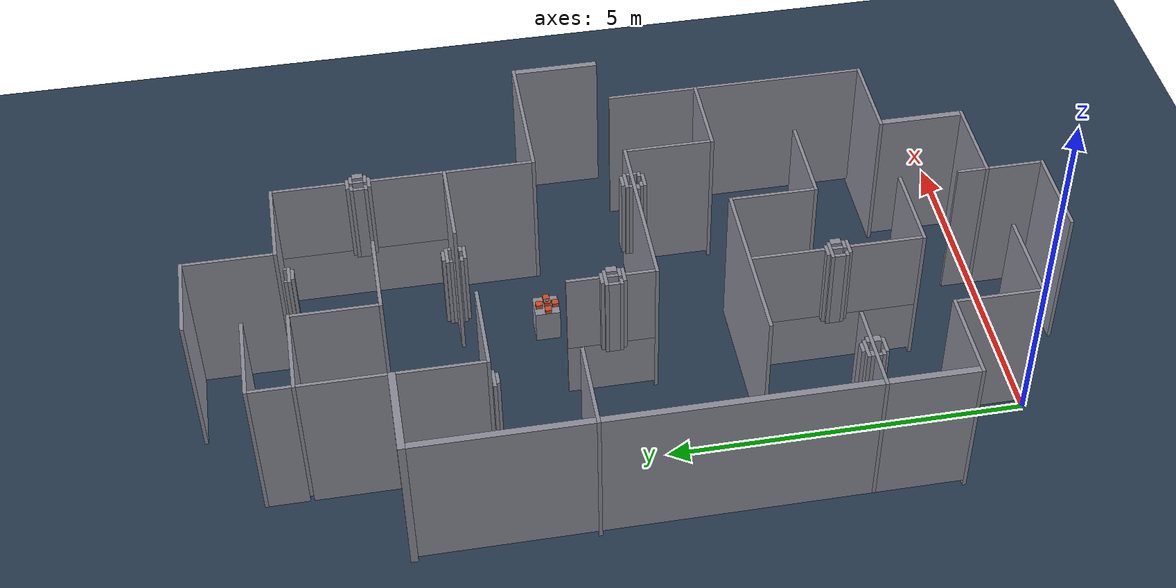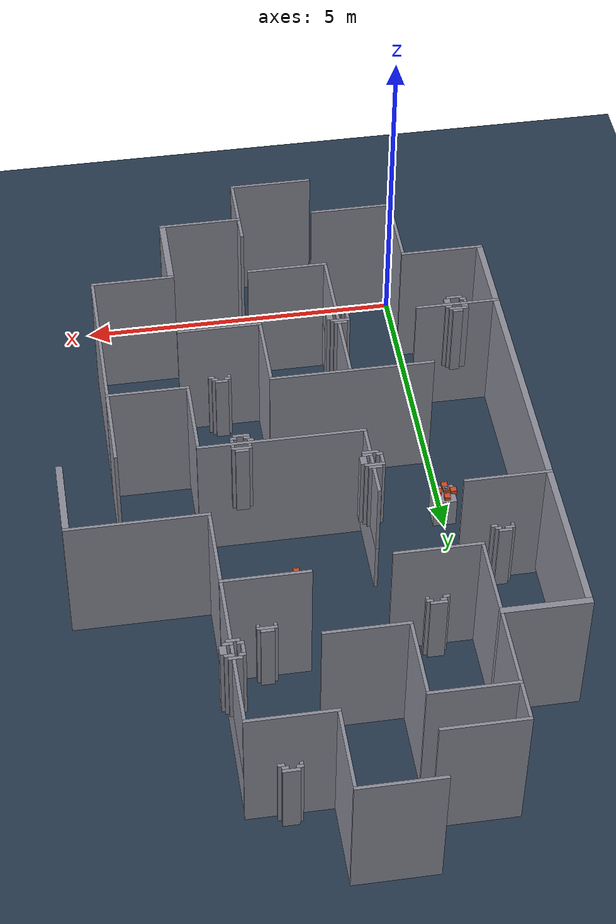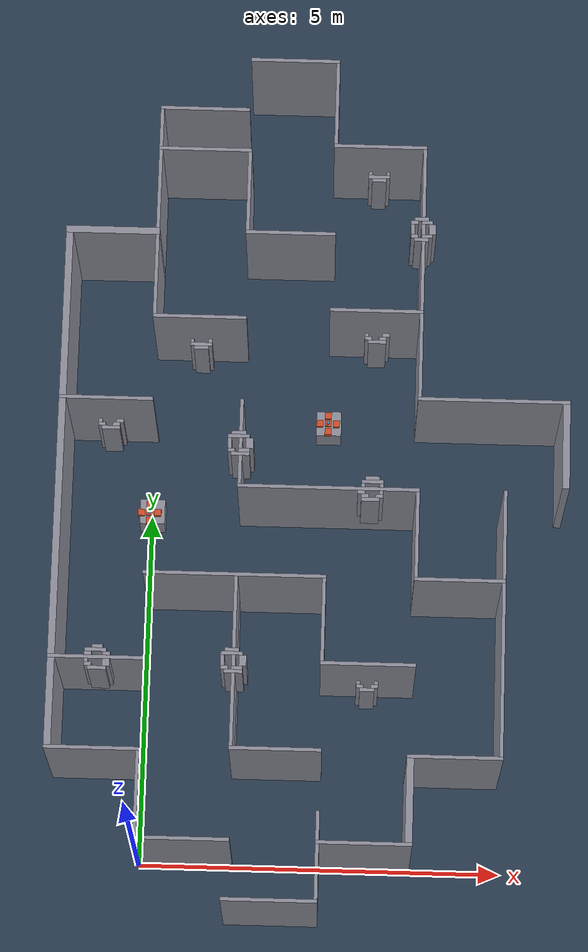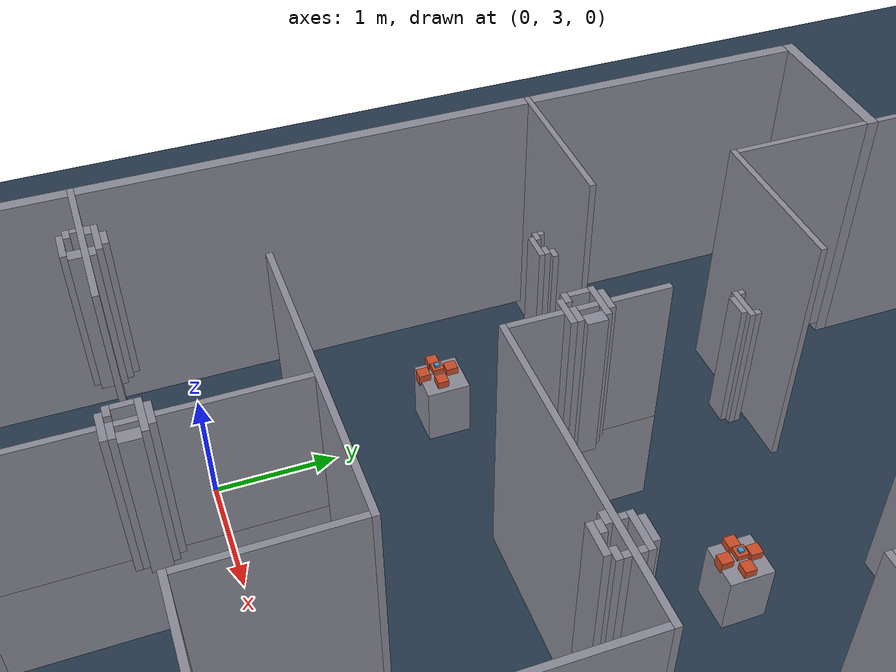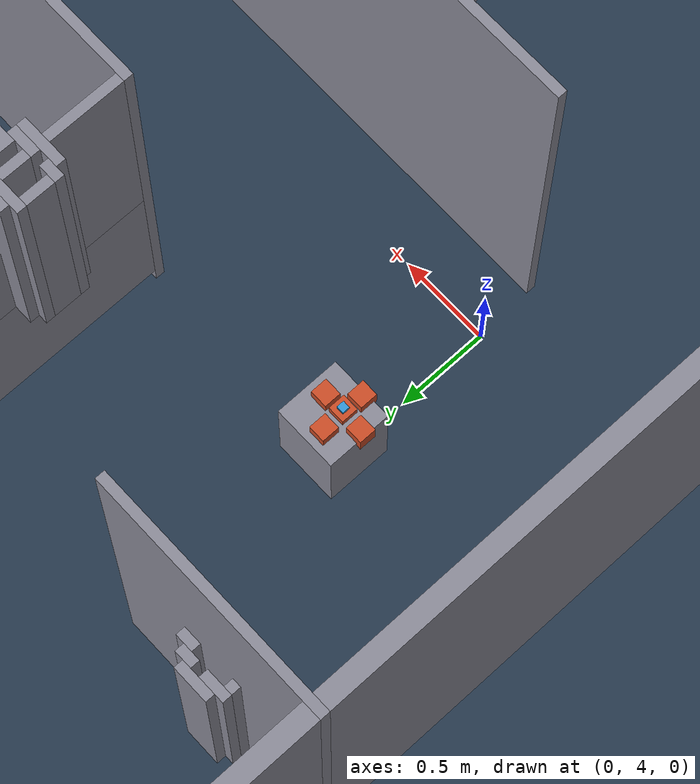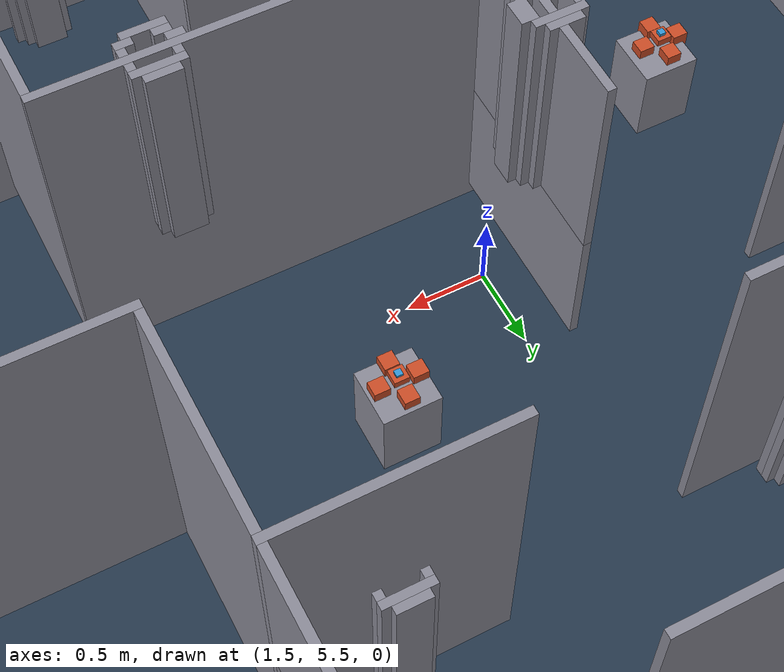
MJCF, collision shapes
<mujoco model="aesir_maze">

  <default>
    <geom condim="4" friction="0.2 0.005 0.0001"/>
  </default>

  <asset>
    <texture name="texplane" type="2d" builtin="checker" rgb1=".2 .3 .4" rgb2=".1 0.15 0.2" width="512" height="512"/>
    <material name="matplane" reflectance="0.3" texture="texplane" texrepeat="4 4" texuniform="true"/>
    <material name="maze_visual" rgba="0.55 0.55 0.6 1"/>
    <material name="obs_hall" rgba="0.8 0.3 0.15 1"/>
    <material name="obs_door" rgba="0.2 0.6 0.85 1"/>

    <mesh name="base_link_mesh" file="meshes/maze/base_link.stl" scale="0.001 0.001 0.001"/>
    <mesh name="hub_2" file="meshes/maze/B2__1___1__2.stl" scale="0.001 0.001 0.001"/>
    <mesh name="hub_3" file="meshes/maze/B2__1___1__3.stl" scale="0.001 0.001 0.001"/>
    <mesh name="hub_4" file="meshes/maze/B2__1___1__4.stl" scale="0.001 0.001 0.001"/>
    <mesh name="hub_5" file="meshes/maze/B2__1___1__5.stl" scale="0.001 0.001 0.001"/>
    <mesh name="hub_6" file="meshes/maze/B2__1___1__6.stl" scale="0.001 0.001 0.001"/>
    <mesh name="hub_7" file="meshes/maze/B2__1___1__7.stl" scale="0.001 0.001 0.001"/>
    <mesh name="hub_8" file="meshes/maze/B2__1___1__8.stl" scale="0.001 0.001 0.001"/>
    <mesh name="hub_9" file="meshes/maze/B2__1___1__9.stl" scale="0.001 0.001 0.001"/>
    <mesh name="hub_10" file="meshes/maze/B2__1___1__10.stl" scale="0.001 0.001 0.001"/>
    <mesh name="hub_11" file="meshes/maze/B2__1___1__11.stl" scale="0.001 0.001 0.001"/>
    <mesh name="door_2" file="meshes/maze/B2__1__2.stl" scale="0.001 0.001 0.001"/>
    <mesh name="door_3" file="meshes/maze/B2__1__3.stl" scale="0.001 0.001 0.001"/>
    <mesh name="door_4" file="meshes/maze/B2__1__4.stl" scale="0.001 0.001 0.001"/>
    <mesh name="door_5" file="meshes/maze/B2__1__5.stl" scale="0.001 0.001 0.001"/>
    <mesh name="door_6" file="meshes/maze/B2__1__6.stl" scale="0.001 0.001 0.001"/>
    <mesh name="door_7" file="meshes/maze/B2__1__7.stl" scale="0.001 0.001 0.001"/>
    <mesh name="door_8" file="meshes/maze/B2__1__8.stl" scale="0.001 0.001 0.001"/>
    <mesh name="door_9" file="meshes/maze/B2__1__9.stl" scale="0.001 0.001 0.001"/>
    <mesh name="door_10" file="meshes/maze/B2__1__10.stl" scale="0.001 0.001 0.001"/>
    <mesh name="door_11" file="meshes/maze/B2__1__11.stl" scale="0.001 0.001 0.001"/>
  </asset>

  <worldbody>
    <light directional="true" pos="3 5 8" dir="-0.5 -0.5 -1"/>
    <light directional="true" pos="-1 2 6" dir="0.5 -0.3 -1"/>

    <geom name="maze_floor" type="plane" size="50 50 0.1" pos="0 0 -.002" material="matplane"/>

    <geom name="fatal_floor" type="plane" size="50 50 0.1" pos="0 0 -.5" rgba="0.6 0.05 0.05 1"/>

    <!-- MAZE visual (mesh vertices ya estan en world coords) -->
    <body name="maze_base">
      <geom name="maze_visual" type="mesh" mesh="base_link_mesh"
            contype="0" conaffinity="0" material="maze_visual"/>
    </body>

    <!-- ===== HUBS + PUERTAS ===== -->
    <!-- Los meshes tienen vertices en world coords, todo en (0,0,0) -->
    <!-- Box colliders en las posiciones de los mesh centers -->

    <!-- Hub 2: mesh center (0.1043, 4.897, 0.6656) -->
    <body name="hub_2">
      <geom name="hub_2_vis" type="mesh" mesh="hub_2"
            contype="0" conaffinity="0" material="obs_hall"/>
      <geom name="hub_2_col" type="box" size="0.0475 0.0452 0.0475"
            pos="0.1043 4.897 0.6656" rgba="0.8 0.3 0.15 0.4"/>
    </body>
    <body name="door_2">
      <geom name="door_2_vis" type="mesh" mesh="door_2"
            contype="0" conaffinity="0" material="obs_door"/>
      <geom name="door_2_col" type="box" size="0.0255 0.0200 0.0255"
            pos="0.1225 4.897 0.6838" rgba="0.2 0.6 0.85 0.4"/>
    </body>

    <!-- Hub 3: mesh center (-0.0113, 5.0125, 0.6656) -->
    <body name="hub_3">
      <geom name="hub_3_vis" type="mesh" mesh="hub_3"
            contype="0" conaffinity="0" material="obs_hall"/>
      <geom name="hub_3_col" type="box" size="0.0452 0.0475 0.0475"
            pos="-0.0113 5.0125 0.6656" rgba="0.8 0.3 0.15 0.4"/>
    </body>
    <body name="door_3">
      <geom name="door_3_vis" type="mesh" mesh="door_3"
            contype="0" conaffinity="0" material="obs_door"/>
      <geom name="door_3_col" type="box" size="0.0200 0.0255 0.0255"
            pos="-0.0113 5.0272 0.6802" rgba="0.2 0.6 0.85 0.4"/>
    </body>

    <!-- Hub 4: mesh center (-0.0113, 4.7814, 0.6656) -->
    <body name="hub_4">
      <geom name="hub_4_vis" type="mesh" mesh="hub_4"
            contype="0" conaffinity="0" material="obs_hall"/>
      <geom name="hub_4_col" type="box" size="0.0452 0.0475 0.0475"
            pos="-0.0113 4.7814 0.6656" rgba="0.8 0.3 0.15 0.4"/>
    </body>
    <body name="door_4">
      <geom name="door_4_vis" type="mesh" mesh="door_4"
            contype="0" conaffinity="0" material="obs_door"/>
      <geom name="door_4_col" type="box" size="0.0200 0.0255 0.0255"
            pos="-0.0113 4.7667 0.6802" rgba="0.2 0.6 0.85 0.4"/>
    </body>

    <!-- Hub 5: mesh center (-0.0113, 4.897, 0.722) -->
    <body name="hub_5">
      <geom name="hub_5_vis" type="mesh" mesh="hub_5"
            contype="0" conaffinity="0" material="obs_hall"/>
      <geom name="hub_5_col" type="box" size="0.0452 0.0452 0.022"
            pos="-0.0113 4.897 0.722" rgba="0.8 0.3 0.15 0.4"/>
    </body>
    <body name="door_5">
      <geom name="door_5_vis" type="mesh" mesh="door_5"
            contype="0" conaffinity="0" material="obs_door"/>
      <geom name="door_5_col" type="box" size="0.0200 0.0200 0.021"
            pos="-0.0113 4.8969 0.744" rgba="0.2 0.6 0.85 0.4"/>
    </body>

    <!-- Hub 6: mesh center (-0.1268, 4.897, 0.6656) -->
    <body name="hub_6">
      <geom name="hub_6_vis" type="mesh" mesh="hub_6"
            contype="0" conaffinity="0" material="obs_hall"/>
      <geom name="hub_6_col" type="box" size="0.0475 0.0452 0.0475"
            pos="-0.1268 4.897 0.6656" rgba="0.8 0.3 0.15 0.4"/>
    </body>
    <body name="door_6">
      <geom name="door_6_vis" type="mesh" mesh="door_6"
            contype="0" conaffinity="0" material="obs_door"/>
      <geom name="door_6_col" type="box" size="0.0255 0.0200 0.0255"
            pos="-0.1431 4.8969 0.6818" rgba="0.2 0.6 0.85 0.4"/>
    </body>

    <!-- Hub 7: mesh center (2.4655, 6.2624, 0.722) -->
    <body name="hub_7">
      <geom name="hub_7_vis" type="mesh" mesh="hub_7"
            contype="0" conaffinity="0" material="obs_hall"/>
      <geom name="hub_7_col" type="box" size="0.0452 0.0452 0.022"
            pos="2.4655 6.2624 0.722" rgba="0.8 0.3 0.15 0.4"/>
    </body>
    <body name="door_7">
      <geom name="door_7_vis" type="mesh" mesh="door_7"
            contype="0" conaffinity="0" material="obs_door"/>
      <geom name="door_7_col" type="box" size="0.0200 0.0200 0.021"
            pos="2.4655 6.2623 0.739" rgba="0.2 0.6 0.85 0.4"/>
    </body>

    <!-- Hub 8: mesh center (2.3499, 6.2624, 0.6656) -->
    <body name="hub_8">
      <geom name="hub_8_vis" type="mesh" mesh="hub_8"
            contype="0" conaffinity="0" material="obs_hall"/>
      <geom name="hub_8_col" type="box" size="0.0475 0.0452 0.0475"
            pos="2.3499 6.2624 0.6656" rgba="0.8 0.3 0.15 0.4"/>
    </body>
    <body name="door_8">
      <geom name="door_8_vis" type="mesh" mesh="door_8"
            contype="0" conaffinity="0" material="obs_door"/>
      <geom name="door_8_col" type="box" size="0.0255 0.0200 0.0255"
            pos="2.3317 6.2624 0.6838" rgba="0.2 0.6 0.85 0.4"/>
    </body>

    <!-- Hub 9: mesh center (2.4655, 6.1468, 0.6656) -->
    <body name="hub_9">
      <geom name="hub_9_vis" type="mesh" mesh="hub_9"
            contype="0" conaffinity="0" material="obs_hall"/>
      <geom name="hub_9_col" type="box" size="0.0452 0.0475 0.0475"
            pos="2.4655 6.1468 0.6656" rgba="0.8 0.3 0.15 0.4"/>
    </body>
    <body name="door_9">
      <geom name="door_9_vis" type="mesh" mesh="door_9"
            contype="0" conaffinity="0" material="obs_door"/>
      <geom name="door_9_col" type="box" size="0.0200 0.0255 0.0255"
            pos="2.4655 6.1286 0.6838" rgba="0.2 0.6 0.85 0.4"/>
    </body>

    <!-- Hub 10: mesh center (2.5811, 6.2624, 0.6656) -->
    <body name="hub_10">
      <geom name="hub_10_vis" type="mesh" mesh="hub_10"
            contype="0" conaffinity="0" material="obs_hall"/>
      <geom name="hub_10_col" type="box" size="0.0475 0.0452 0.0475"
            pos="2.5811 6.2624 0.6656" rgba="0.8 0.3 0.15 0.4"/>
    </body>
    <body name="door_10">
      <geom name="door_10_vis" type="mesh" mesh="door_10"
            contype="0" conaffinity="0" material="obs_door"/>
      <geom name="door_10_col" type="box" size="0.0255 0.0200 0.0255"
            pos="2.5993 6.2624 0.6838" rgba="0.2 0.6 0.85 0.4"/>
    </body>

    <!-- Hub 11: mesh center (2.4655, 6.3779, 0.6656) -->
    <body name="hub_11">
      <geom name="hub_11_vis" type="mesh" mesh="hub_11"
            contype="0" conaffinity="0" material="obs_hall"/>
      <geom name="hub_11_col" type="box" size="0.0452 0.0475 0.0475"
            pos="2.4655 6.3779 0.6656" rgba="0.8 0.3 0.15 0.4"/>
    </body>
    <body name="door_11">
      <geom name="door_11_vis" type="mesh" mesh="door_11"
            contype="0" conaffinity="0" material="obs_door"/>
      <geom name="door_11_col" type="box" size="0.0200 0.0255 0.0255"
            pos="2.4655 6.3961 0.6838" rgba="0.2 0.6 0.85 0.4"/>
    </body>

  <body name="maze_collision">
    <geom name="maze_collision_0" type="box" pos="-1.2000 1.8500 1.2000" size="0.0500 0.6000 1.0500" rgba="0.55 0.55 0.6 0.25" contype="1" conaffinity="1"/>
    <geom name="maze_collision_4" type="box" pos="-1.2000 4.3000 1.2000" size="0.0500 1.8000 1.0500" rgba="0.55 0.55 0.6 0.25" contype="1" conaffinity="1"/>
    <geom name="maze_collision_7" type="box" pos="-1.2000 7.3250 1.2000" size="0.0500 1.1750 1.0500" rgba="0.55 0.55 0.6 0.25" contype="1" conaffinity="1"/>
    <geom name="maze_collision_19" type="box" pos="-0.6000 1.2250 1.1500" size="0.6500 0.0250 1.1000" rgba="0.55 0.55 0.6 0.25" contype="1" conaffinity="1"/>
    <geom name="maze_collision_20" type="box" pos="-0.6000 2.4750 1.2000" size="0.6500 0.0250 1.0500" rgba="0.55 0.55 0.6 0.25" contype="1" conaffinity="1"/>
    <geom name="maze_collision_21" type="box" pos="-0.6000 6.1250 1.1500" size="0.6500 0.0250 1.1000" rgba="0.55 0.55 0.6 0.25" contype="1" conaffinity="1"/>
    <geom name="maze_collision_22" type="box" pos="-0.6000 8.5500 1.1500" size="0.6500 0.0500 1.1000" rgba="0.55 0.55 0.6 0.25" contype="1" conaffinity="1"/>
    <geom name="maze_collision_60" type="box" pos="-0.7250 2.4250 1.6250" size="0.0250 0.0250 0.6250" rgba="0.55 0.55 0.6 0.25" contype="1" conaffinity="1"/>
    <geom name="maze_collision_61" type="box" pos="-0.7250 6.0750 0.6500" size="0.0250 0.0250 0.6000" rgba="0.55 0.55 0.6 0.25" contype="1" conaffinity="1"/>
    <geom name="maze_collision_62" type="box" pos="-0.7250 6.1750 0.6500" size="0.0250 0.0250 0.6000" rgba="0.55 0.55 0.6 0.25" contype="1" conaffinity="1"/>
    <geom name="maze_collision_63" type="box" pos="-0.7000 2.3750 1.6250" size="0.0500 0.0250 0.6250" rgba="0.55 0.55 0.6 0.25" contype="1" conaffinity="1"/>
    <geom name="maze_collision_64" type="box" pos="-0.7000 2.5250 1.6250" size="0.0500 0.0250 0.6250" rgba="0.55 0.55 0.6 0.25" contype="1" conaffinity="1"/>
    <geom name="maze_collision_65" type="box" pos="-0.7000 6.0250 0.6500" size="0.0500 0.0250 0.6000" rgba="0.55 0.55 0.6 0.25" contype="1" conaffinity="1"/>
    <geom name="maze_collision_66" type="box" pos="-0.6750 6.2250 0.6500" size="0.0750 0.0250 0.6000" rgba="0.55 0.55 0.6 0.25" contype="1" conaffinity="1"/>
    <geom name="maze_collision_71" type="box" pos="-0.6000 2.5750 1.6250" size="0.1500 0.0250 0.6250" rgba="0.55 0.55 0.6 0.25" contype="1" conaffinity="1"/>
    <geom name="maze_collision_72" type="box" pos="-0.6000 6.2750 0.6500" size="0.1000 0.0250 0.6000" rgba="0.55 0.55 0.6 0.25" contype="1" conaffinity="1"/>
    <geom name="maze_collision_76" type="box" pos="-0.5750 2.3250 1.6250" size="0.1250 0.0250 0.6250" rgba="0.55 0.55 0.6 0.25" contype="1" conaffinity="1"/>
    <geom name="maze_collision_78" type="box" pos="-0.5750 5.9750 0.6500" size="0.1250 0.0250 0.6000" rgba="0.55 0.55 0.6 0.25" contype="1" conaffinity="1"/>
    <geom name="maze_collision_79" type="box" pos="-0.5750 2.6250 1.6250" size="0.0750 0.0250 0.6250" rgba="0.55 0.55 0.6 0.25" contype="1" conaffinity="1"/>
    <geom name="maze_collision_89" type="box" pos="-0.5000 6.0250 0.6500" size="0.0500 0.0250 0.6000" rgba="0.55 0.55 0.6 0.25" contype="1" conaffinity="1"/>
    <geom name="maze_collision_90" type="box" pos="-0.5000 6.2250 0.6500" size="0.0500 0.0250 0.6000" rgba="0.55 0.55 0.6 0.25" contype="1" conaffinity="1"/>
    <geom name="maze_collision_95" type="box" pos="-0.4500 2.4000 1.6250" size="0.0500 0.0500 0.6250" rgba="0.55 0.55 0.6 0.25" contype="1" conaffinity="1"/>
    <geom name="maze_collision_96" type="box" pos="-0.4500 2.5250 1.6250" size="0.0500 0.0250 0.6250" rgba="0.55 0.55 0.6 0.25" contype="1" conaffinity="1"/>
    <geom name="maze_collision_97" type="box" pos="-0.4500 6.0750 0.6500" size="0.0500 0.0250 0.6000" rgba="0.55 0.55 0.6 0.25" contype="1" conaffinity="1"/>
    <geom name="maze_collision_98" type="box" pos="-0.4500 6.1750 0.6500" size="0.0500 0.0250 0.6000" rgba="0.55 0.55 0.6 0.25" contype="1" conaffinity="1"/>
    <geom name="maze_collision_132" type="box" pos="0.0250 4.9250 0.4000" size="0.1750 0.1750 0.2500" rgba="0.55 0.55 0.6 0.25" contype="1" conaffinity="1"/>
    <geom name="maze_collision_143" type="box" pos="0.0250 0.6250 1.2000" size="0.0250 0.5750 1.0500" rgba="0.55 0.55 0.6 0.25" contype="1" conaffinity="1"/>
    <geom name="maze_collision_145" type="box" pos="0.0250 7.9250 1.2000" size="0.0250 0.5750 1.0500" rgba="0.55 0.55 0.6 0.25" contype="1" conaffinity="1"/>
    <geom name="maze_collision_147" type="box" pos="0.0250 9.1750 1.1500" size="0.0250 0.5750 1.1000" rgba="0.55 0.55 0.6 0.25" contype="1" conaffinity="1"/>
    <geom name="maze_collision_148" type="box" pos="0.0250 10.0750 1.1500" size="0.0250 0.2750 1.1000" rgba="0.55 0.55 0.6 0.25" contype="1" conaffinity="1"/>
    <geom name="maze_collision_152" type="box" pos="0.6250 10.3750 1.1500" size="0.6250 0.0250 1.1000" rgba="0.55 0.55 0.6 0.25" contype="1" conaffinity="1"/>
    <geom name="maze_collision_153" type="box" pos="0.6500 0.0250 1.1500" size="0.6500 0.0250 1.1000" rgba="0.55 0.55 0.6 0.25" contype="1" conaffinity="1"/>
    <geom name="maze_collision_154" type="box" pos="0.6500 7.3250 1.2000" size="0.6500 0.0250 1.0500" rgba="0.55 0.55 0.6 0.25" contype="1" conaffinity="1"/>
    <geom name="maze_collision_155" type="box" pos="0.6500 9.7750 1.2000" size="0.6500 0.0250 1.0500" rgba="0.55 0.55 0.6 0.25" contype="1" conaffinity="1"/>
    <geom name="maze_collision_158" type="box" pos="1.2500 3.6750 1.1500" size="1.2500 0.0250 1.1000" rgba="0.55 0.55 0.6 0.25" contype="1" conaffinity="1"/>
    <geom name="maze_collision_195" type="box" pos="0.5000 7.3750 0.6500" size="0.0500 0.0250 0.6000" rgba="0.55 0.55 0.6 0.25" contype="1" conaffinity="1"/>
    <geom name="maze_collision_200" type="box" pos="0.5250 7.2750 0.6500" size="0.0250 0.0250 0.6000" rgba="0.55 0.55 0.6 0.25" contype="1" conaffinity="1"/>
    <geom name="maze_collision_201" type="box" pos="0.5500 7.4250 0.6500" size="0.0500 0.0250 0.6000" rgba="0.55 0.55 0.6 0.25" contype="1" conaffinity="1"/>
    <geom name="maze_collision_206" type="box" pos="0.6250 7.4750 0.6500" size="0.1250 0.0250 0.6000" rgba="0.55 0.55 0.6 0.25" contype="1" conaffinity="1"/>
    <geom name="maze_collision_207" type="box" pos="0.6500 7.2250 0.6500" size="0.1500 0.0250 0.6000" rgba="0.55 0.55 0.6 0.25" contype="1" conaffinity="1"/>
    <geom name="maze_collision_211" type="box" pos="0.6500 7.1750 0.6500" size="0.1000 0.0250 0.6000" rgba="0.55 0.55 0.6 0.25" contype="1" conaffinity="1"/>
    <geom name="maze_collision_221" type="box" pos="0.7500 7.4250 0.6500" size="0.0500 0.0250 0.6000" rgba="0.55 0.55 0.6 0.25" contype="1" conaffinity="1"/>
    <geom name="maze_collision_226" type="box" pos="0.7750 7.2750 0.6500" size="0.0250 0.0250 0.6000" rgba="0.55 0.55 0.6 0.25" contype="1" conaffinity="1"/>
    <geom name="maze_collision_227" type="box" pos="0.7750 7.3750 0.6500" size="0.0250 0.0250 0.6000" rgba="0.55 0.55 0.6 0.25" contype="1" conaffinity="1"/>
    <geom name="maze_collision_253" type="box" pos="1.1250 2.4750 1.6250" size="0.0250 0.0750 0.6250" rgba="0.55 0.55 0.6 0.25" contype="1" conaffinity="1"/>
    <geom name="maze_collision_254" type="box" pos="1.1250 5.5250 1.6250" size="0.0250 0.0750 0.6250" rgba="0.55 0.55 0.6 0.25" contype="1" conaffinity="1"/>
    <geom name="maze_collision_256" type="box" pos="1.1500 2.3750 1.6250" size="0.0500 0.0250 0.6250" rgba="0.55 0.55 0.6 0.25" contype="1" conaffinity="1"/>
    <geom name="maze_collision_258" type="box" pos="1.1500 5.4250 1.6250" size="0.0500 0.0250 0.6250" rgba="0.55 0.55 0.6 0.25" contype="1" conaffinity="1"/>
    <geom name="maze_collision_261" type="box" pos="1.2500 2.5750 1.6250" size="0.1500 0.0250 0.6250" rgba="0.55 0.55 0.6 0.25" contype="1" conaffinity="1"/>
    <geom name="maze_collision_262" type="box" pos="1.2500 5.6250 1.6250" size="0.1500 0.0250 0.6250" rgba="0.55 0.55 0.6 0.25" contype="1" conaffinity="1"/>
    <geom name="maze_collision_264" type="box" pos="1.2500 2.6250 1.6250" size="0.1000 0.0250 0.6250" rgba="0.55 0.55 0.6 0.25" contype="1" conaffinity="1"/>
    <geom name="maze_collision_265" type="box" pos="1.2500 5.6750 1.6250" size="0.1000 0.0250 0.6250" rgba="0.55 0.55 0.6 0.25" contype="1" conaffinity="1"/>
    <geom name="maze_collision_266" type="box" pos="1.2750 2.3250 1.6250" size="0.1250 0.0250 0.6250" rgba="0.55 0.55 0.6 0.25" contype="1" conaffinity="1"/>
    <geom name="maze_collision_267" type="box" pos="1.2750 5.3750 1.6250" size="0.1250 0.0250 0.6250" rgba="0.55 0.55 0.6 0.25" contype="1" conaffinity="1"/>
    <geom name="maze_collision_269" type="box" pos="1.8500 -0.7750 1.1500" size="0.6500 0.0250 1.1000" rgba="0.55 0.55 0.6 0.25" contype="1" conaffinity="1"/>
    <geom name="maze_collision_271" type="box" pos="1.2750 1.8000 1.6250" size="0.0250 0.5000 0.6250" rgba="0.55 0.55 0.6 0.25" contype="1" conaffinity="1"/>
    <geom name="maze_collision_272" type="box" pos="1.2750 2.4750 0.5750" size="0.0250 1.1750 0.4250" rgba="0.55 0.55 0.6 0.25" contype="1" conaffinity="1"/>
    <geom name="maze_collision_273" type="box" pos="1.2750 2.4750 1.6250" size="0.0250 0.0750 0.6250" rgba="0.55 0.55 0.6 0.25" contype="1" conaffinity="1"/>
    <geom name="maze_collision_275" type="box" pos="1.2750 3.1500 1.6250" size="0.0250 0.5000 0.6250" rgba="0.55 0.55 0.6 0.25" contype="1" conaffinity="1"/>
    <geom name="maze_collision_276" type="box" pos="1.2750 5.1500 1.6250" size="0.0250 0.2000 0.6250" rgba="0.55 0.55 0.6 0.25" contype="1" conaffinity="1"/>
    <geom name="maze_collision_278" type="box" pos="1.2750 5.5500 0.5750" size="0.0250 0.6000 0.4250" rgba="0.55 0.55 0.6 0.25" contype="1" conaffinity="1"/>
    <geom name="maze_collision_279" type="box" pos="1.2750 5.5250 1.6250" size="0.0250 0.0750 0.6250" rgba="0.55 0.55 0.6 0.25" contype="1" conaffinity="1"/>
    <geom name="maze_collision_280" type="box" pos="1.2750 5.9250 1.6250" size="0.0250 0.2250 0.6250" rgba="0.55 0.55 0.6 0.25" contype="1" conaffinity="1"/>
    <geom name="maze_collision_283" type="box" pos="1.2750 9.1750 1.2000" size="0.0250 0.5750 1.0500" rgba="0.55 0.55 0.6 0.25" contype="1" conaffinity="1"/>
    <geom name="maze_collision_284" type="box" pos="1.3250 2.3750 1.6250" size="0.0750 0.0250 0.6250" rgba="0.55 0.55 0.6 0.25" contype="1" conaffinity="1"/>
    <geom name="maze_collision_286" type="box" pos="1.3250 5.4250 1.6250" size="0.0750 0.0250 0.6250" rgba="0.55 0.55 0.6 0.25" contype="1" conaffinity="1"/>
    <geom name="maze_collision_292" type="box" pos="1.8750 1.2750 1.1500" size="0.6250 0.0250 1.1000" rgba="0.55 0.55 0.6 0.25" contype="1" conaffinity="1"/>
    <geom name="maze_collision_293" type="box" pos="1.8750 8.5750 1.2000" size="0.6250 0.0250 1.0500" rgba="0.55 0.55 0.6 0.25" contype="1" conaffinity="1"/>
    <geom name="maze_collision_294" type="box" pos="1.8750 11.1250 1.1500" size="0.6250 0.0250 1.1000" rgba="0.55 0.55 0.6 0.25" contype="1" conaffinity="1"/>
    <geom name="maze_collision_297" type="box" pos="2.5000 4.9250 1.1500" size="1.2500 0.0250 1.1000" rgba="0.55 0.55 0.6 0.25" contype="1" conaffinity="1"/>
    <geom name="maze_collision_299" type="box" pos="1.4000 2.4750 1.6250" size="0.0500 0.0750 0.6250" rgba="0.55 0.55 0.6 0.25" contype="1" conaffinity="1"/>
    <geom name="maze_collision_300" type="box" pos="1.4000 5.5250 1.6250" size="0.0500 0.0750 0.6250" rgba="0.55 0.55 0.6 0.25" contype="1" conaffinity="1"/>
    <geom name="maze_collision_401" type="box" pos="2.4750 6.2750 0.4000" size="0.1750 0.1750 0.2500" rgba="0.55 0.55 0.6 0.25" contype="1" conaffinity="1"/>
    <geom name="maze_collision_410" type="box" pos="2.4750 -0.3750 1.1500" size="0.0250 0.3750 1.1000" rgba="0.55 0.55 0.6 0.25" contype="1" conaffinity="1"/>
    <geom name="maze_collision_411" type="box" pos="2.4750 0.2500 1.1500" size="0.0250 0.2000 1.1000" rgba="0.55 0.55 0.6 0.25" contype="1" conaffinity="1"/>
    <geom name="maze_collision_413" type="box" pos="2.4750 3.0750 1.2000" size="0.0250 0.5750 1.0500" rgba="0.55 0.55 0.6 0.25" contype="1" conaffinity="1"/>
    <geom name="maze_collision_414" type="box" pos="2.4750 10.5000 1.1500" size="0.0250 0.6000 1.1000" rgba="0.55 0.55 0.6 0.25" contype="1" conaffinity="1"/>
    <geom name="maze_collision_421" type="box" pos="3.1000 0.0250 1.1500" size="0.6500 0.0250 1.1000" rgba="0.55 0.55 0.6 0.25" contype="1" conaffinity="1"/>
    <geom name="maze_collision_422" type="box" pos="3.1000 2.4750 1.2000" size="0.6500 0.0250 1.0500" rgba="0.55 0.55 0.6 0.25" contype="1" conaffinity="1"/>
    <geom name="maze_collision_423" type="box" pos="3.1000 7.4750 1.1500" size="0.6500 0.0250 1.1000" rgba="0.55 0.55 0.6 0.25" contype="1" conaffinity="1"/>
    <geom name="maze_collision_424" type="box" pos="3.1000 9.8750 1.1500" size="0.6500 0.0250 1.1000" rgba="0.55 0.55 0.6 0.25" contype="1" conaffinity="1"/>
    <geom name="maze_collision_479" type="box" pos="2.9500 4.8750 1.6250" size="0.0500 0.0250 0.6250" rgba="0.55 0.55 0.6 0.25" contype="1" conaffinity="1"/>
    <geom name="maze_collision_487" type="box" pos="2.9750 2.4250 0.6500" size="0.0250 0.0250 0.6000" rgba="0.55 0.55 0.6 0.25" contype="1" conaffinity="1"/>
    <geom name="maze_collision_488" type="box" pos="2.9750 2.5250 0.6500" size="0.0250 0.0250 0.6000" rgba="0.55 0.55 0.6 0.25" contype="1" conaffinity="1"/>
    <geom name="maze_collision_489" type="box" pos="2.9750 4.9750 1.6250" size="0.0250 0.0250 0.6250" rgba="0.55 0.55 0.6 0.25" contype="1" conaffinity="1"/>
    <geom name="maze_collision_490" type="box" pos="2.9750 7.4250 0.6500" size="0.0250 0.0250 0.6000" rgba="0.55 0.55 0.6 0.25" contype="1" conaffinity="1"/>
    <geom name="maze_collision_491" type="box" pos="2.9750 7.5250 0.6500" size="0.0250 0.0250 0.6000" rgba="0.55 0.55 0.6 0.25" contype="1" conaffinity="1"/>
    <geom name="maze_collision_492" type="box" pos="2.9750 9.8250 0.6500" size="0.0250 0.0250 0.6000" rgba="0.55 0.55 0.6 0.25" contype="1" conaffinity="1"/>
    <geom name="maze_collision_493" type="box" pos="2.9750 9.9250 0.6250" size="0.0250 0.0250 0.6250" rgba="0.55 0.55 0.6 0.25" contype="1" conaffinity="1"/>
    <geom name="maze_collision_494" type="box" pos="3.0000 2.3750 0.6500" size="0.0500 0.0250 0.6000" rgba="0.55 0.55 0.6 0.25" contype="1" conaffinity="1"/>
    <geom name="maze_collision_495" type="box" pos="3.0000 2.5750 0.6500" size="0.0500 0.0250 0.6000" rgba="0.55 0.55 0.6 0.25" contype="1" conaffinity="1"/>
    <geom name="maze_collision_496" type="box" pos="3.0000 4.8250 1.6250" size="0.0500 0.0250 0.6250" rgba="0.55 0.55 0.6 0.25" contype="1" conaffinity="1"/>
    <geom name="maze_collision_497" type="box" pos="3.0000 7.3750 0.6500" size="0.0500 0.0250 0.6000" rgba="0.55 0.55 0.6 0.25" contype="1" conaffinity="1"/>
    <geom name="maze_collision_498" type="box" pos="3.0000 9.9750 0.6250" size="0.0500 0.0250 0.6250" rgba="0.55 0.55 0.6 0.25" contype="1" conaffinity="1"/>
    <geom name="maze_collision_503" type="box" pos="3.0750 4.7750 1.6250" size="0.1250 0.0250 0.6250" rgba="0.55 0.55 0.6 0.25" contype="1" conaffinity="1"/>
    <geom name="maze_collision_506" type="box" pos="3.1000 5.0250 1.6250" size="0.1500 0.0250 0.6250" rgba="0.55 0.55 0.6 0.25" contype="1" conaffinity="1"/>
    <geom name="maze_collision_507" type="box" pos="3.1000 7.5750 0.6500" size="0.1500 0.0250 0.6000" rgba="0.55 0.55 0.6 0.25" contype="1" conaffinity="1"/>
    <geom name="maze_collision_508" type="box" pos="3.1000 9.7750 0.6500" size="0.1500 0.0250 0.6000" rgba="0.55 0.55 0.6 0.25" contype="1" conaffinity="1"/>
    <geom name="maze_collision_510" type="box" pos="3.1000 2.3250 0.6500" size="0.1000 0.0250 0.6000" rgba="0.55 0.55 0.6 0.25" contype="1" conaffinity="1"/>
    <geom name="maze_collision_511" type="box" pos="3.1000 2.6250 0.6500" size="0.1000 0.0250 0.6000" rgba="0.55 0.55 0.6 0.25" contype="1" conaffinity="1"/>
    <geom name="maze_collision_513" type="box" pos="3.1000 5.0750 1.6250" size="0.1000 0.0250 0.6250" rgba="0.55 0.55 0.6 0.25" contype="1" conaffinity="1"/>
    <geom name="maze_collision_514" type="box" pos="3.1000 7.6250 0.6500" size="0.1000 0.0250 0.6000" rgba="0.55 0.55 0.6 0.25" contype="1" conaffinity="1"/>
    <geom name="maze_collision_515" type="box" pos="3.1000 9.7250 0.6500" size="0.1000 0.0250 0.6000" rgba="0.55 0.55 0.6 0.25" contype="1" conaffinity="1"/>
    <geom name="maze_collision_518" type="box" pos="3.1250 7.3250 0.6500" size="0.1250 0.0250 0.6000" rgba="0.55 0.55 0.6 0.25" contype="1" conaffinity="1"/>
    <geom name="maze_collision_521" type="box" pos="3.1250 10.0250 0.6250" size="0.1250 0.0250 0.6250" rgba="0.55 0.55 0.6 0.25" contype="1" conaffinity="1"/>
    <geom name="maze_collision_535" type="box" pos="3.2000 2.3750 0.6500" size="0.0500 0.0250 0.6000" rgba="0.55 0.55 0.6 0.25" contype="1" conaffinity="1"/>
    <geom name="maze_collision_536" type="box" pos="3.2000 2.5750 0.6500" size="0.0500 0.0250 0.6000" rgba="0.55 0.55 0.6 0.25" contype="1" conaffinity="1"/>
    <geom name="maze_collision_537" type="box" pos="3.2000 4.8250 1.6250" size="0.0500 0.0250 0.6250" rgba="0.55 0.55 0.6 0.25" contype="1" conaffinity="1"/>
    <geom name="maze_collision_538" type="box" pos="3.2000 7.3750 0.6500" size="0.0500 0.0250 0.6000" rgba="0.55 0.55 0.6 0.25" contype="1" conaffinity="1"/>
    <geom name="maze_collision_539" type="box" pos="3.2000 9.9750 0.6250" size="0.0500 0.0250 0.6250" rgba="0.55 0.55 0.6 0.25" contype="1" conaffinity="1"/>
    <geom name="maze_collision_546" type="box" pos="3.2250 2.4250 0.6500" size="0.0250 0.0250 0.6000" rgba="0.55 0.55 0.6 0.25" contype="1" conaffinity="1"/>
    <geom name="maze_collision_547" type="box" pos="3.2250 4.8750 1.6250" size="0.0250 0.0250 0.6250" rgba="0.55 0.55 0.6 0.25" contype="1" conaffinity="1"/>
    <geom name="maze_collision_548" type="box" pos="3.2250 4.9750 1.6250" size="0.0250 0.0250 0.6250" rgba="0.55 0.55 0.6 0.25" contype="1" conaffinity="1"/>
    <geom name="maze_collision_549" type="box" pos="3.2250 7.5250 0.6500" size="0.0250 0.0250 0.6000" rgba="0.55 0.55 0.6 0.25" contype="1" conaffinity="1"/>
    <geom name="maze_collision_550" type="box" pos="3.2250 9.8250 0.6500" size="0.0250 0.0250 0.6000" rgba="0.55 0.55 0.6 0.25" contype="1" conaffinity="1"/>
    <geom name="maze_collision_551" type="box" pos="3.2500 2.5250 0.6500" size="0.0500 0.0250 0.6000" rgba="0.55 0.55 0.6 0.25" contype="1" conaffinity="1"/>
    <geom name="maze_collision_552" type="box" pos="3.2500 7.4250 0.6500" size="0.0500 0.0250 0.6000" rgba="0.55 0.55 0.6 0.25" contype="1" conaffinity="1"/>
    <geom name="maze_collision_553" type="box" pos="3.2500 9.9250 0.6250" size="0.0500 0.0250 0.6250" rgba="0.55 0.55 0.6 0.25" contype="1" conaffinity="1"/>
    <geom name="maze_collision_594" type="box" pos="3.5750 8.6750 1.6250" size="0.0250 0.0750 0.6250" rgba="0.55 0.55 0.6 0.25" contype="1" conaffinity="1"/>
    <geom name="maze_collision_595" type="box" pos="3.6000 8.5750 1.6250" size="0.0500 0.0250 0.6250" rgba="0.55 0.55 0.6 0.25" contype="1" conaffinity="1"/>
    <geom name="maze_collision_596" type="box" pos="3.6000 8.7750 1.6250" size="0.0500 0.0250 0.6250" rgba="0.55 0.55 0.6 0.25" contype="1" conaffinity="1"/>
    <geom name="maze_collision_605" type="box" pos="3.7000 8.5250 1.6250" size="0.1000 0.0250 0.6250" rgba="0.55 0.55 0.6 0.25" contype="1" conaffinity="1"/>
    <geom name="maze_collision_606" type="box" pos="3.7000 8.8250 1.6250" size="0.1000 0.0250 0.6250" rgba="0.55 0.55 0.6 0.25" contype="1" conaffinity="1"/>
    <geom name="maze_collision_607" type="box" pos="3.7000 0.6250 1.2000" size="0.0500 0.5750 1.0500" rgba="0.55 0.55 0.6 0.25" contype="1" conaffinity="1"/>
    <geom name="maze_collision_610" type="box" pos="4.3000 1.2250 1.1500" size="0.6500 0.0250 1.1000" rgba="0.55 0.55 0.6 0.25" contype="1" conaffinity="1"/>
    <geom name="maze_collision_612" type="box" pos="3.7250 4.3000 1.2000" size="0.0250 0.6000 1.0500" rgba="0.55 0.55 0.6 0.25" contype="1" conaffinity="1"/>
    <geom name="maze_collision_613" type="box" pos="3.7250 6.8500 1.1500" size="0.0250 0.6000 1.1000" rgba="0.55 0.55 0.6 0.25" contype="1" conaffinity="1"/>
    <geom name="maze_collision_614" type="box" pos="3.7250 8.0000 1.6250" size="0.0250 0.5000 0.6250" rgba="0.55 0.55 0.6 0.25" contype="1" conaffinity="1"/>
    <geom name="maze_collision_615" type="box" pos="3.7250 8.6750 0.5750" size="0.0250 1.1750 0.4250" rgba="0.55 0.55 0.6 0.25" contype="1" conaffinity="1"/>
    <geom name="maze_collision_617" type="box" pos="3.7250 8.6750 1.6250" size="0.0250 0.0750 0.6250" rgba="0.55 0.55 0.6 0.25" contype="1" conaffinity="1"/>
    <geom name="maze_collision_618" type="box" pos="3.7250 9.3500 1.6250" size="0.0250 0.5000 0.6250" rgba="0.55 0.55 0.6 0.25" contype="1" conaffinity="1"/>
    <geom name="maze_collision_620" type="box" pos="3.7750 8.5750 1.6250" size="0.0750 0.0250 0.6250" rgba="0.55 0.55 0.6 0.25" contype="1" conaffinity="1"/>
    <geom name="maze_collision_621" type="box" pos="3.7750 8.7750 1.6250" size="0.0750 0.0250 0.6250" rgba="0.55 0.55 0.6 0.25" contype="1" conaffinity="1"/>
    <geom name="maze_collision_623" type="box" pos="4.3250 3.6750 1.1500" size="0.6250 0.0250 1.1000" rgba="0.55 0.55 0.6 0.25" contype="1" conaffinity="1"/>
    <geom name="maze_collision_624" type="box" pos="4.7500 6.2250 1.1500" size="1.0500 0.0250 1.1000" rgba="0.55 0.55 0.6 0.25" contype="1" conaffinity="1"/>
    <geom name="maze_collision_626" type="box" pos="3.8500 8.6750 1.6250" size="0.0500 0.0750 0.6250" rgba="0.55 0.55 0.6 0.25" contype="1" conaffinity="1"/>
    <geom name="maze_collision_671" type="box" pos="4.9250 2.4500 1.2000" size="0.0250 1.2000 1.0500" rgba="0.55 0.55 0.6 0.25" contype="1" conaffinity="1"/>
    <geom name="maze_collision_673" type="box" pos="4.9250 4.3250 1.1500" size="0.0250 0.6250 1.1000" rgba="0.55 0.55 0.6 0.25" contype="1" conaffinity="1"/>
    <geom name="maze_collision_674" type="box" pos="5.7500 5.6000 1.1500" size="0.0500 0.6000 1.1000" rgba="0.55 0.55 0.6 0.25" contype="1" conaffinity="1"/>
  </body>

  </worldbody>

</mujoco>
